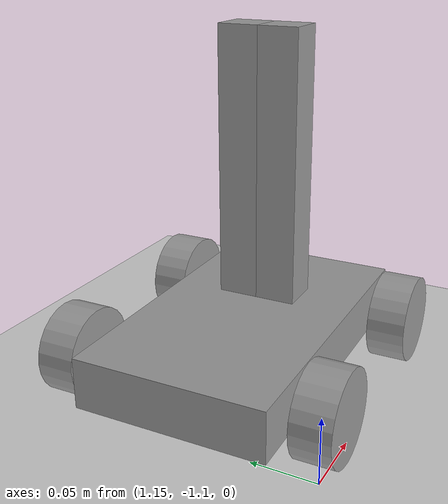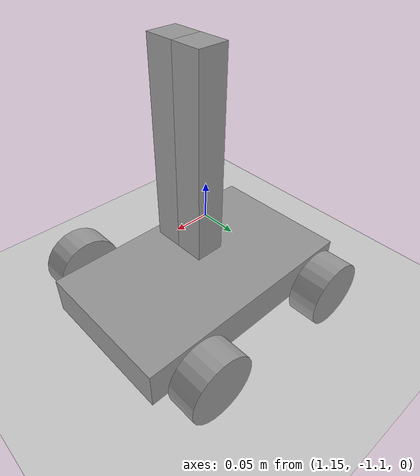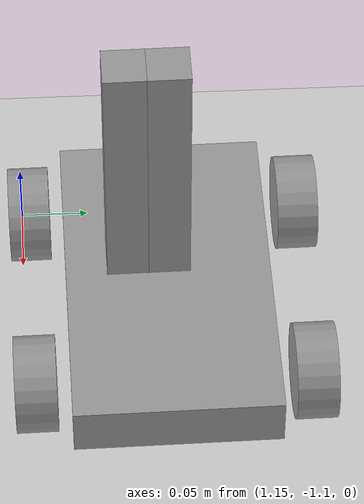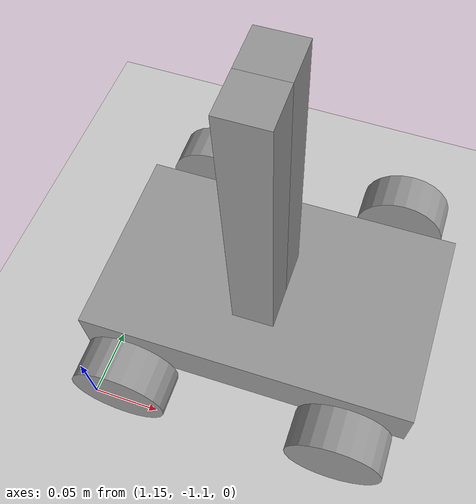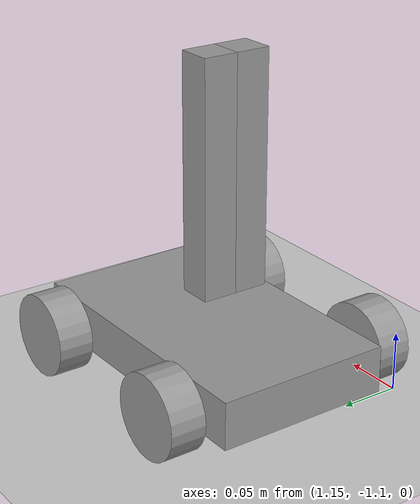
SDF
<sdf version="1.6">
 <world name="default">
  <model name="ground_plane">
   <static>1</static>
   <link name="link">
    <collision name="collision">
     <geometry><plane><normal>0 0 1</normal><size>100 100</size></plane></geometry>
     <surface><friction><ode><mu>100</mu><mu2>50</mu2></ode></friction></surface>
    </collision>
    <visual name="visual">
     <cast_shadows>0</cast_shadows>
     <geometry><plane><normal>0 0 1</normal><size>100 100</size></plane></geometry>
     <material>
      <script><uri>file://media/materials/scripts/gazebo.material</uri><name>Gazebo/Grey</name></script>
     </material>
    </visual>
   </link>
  </model>
  <model name="MRA">
   <link name="link_0">
    <inertial>
     <mass>1</mass>
     <inertia>
      <ixx>0.166667</ixx>
      <ixy>0</ixy>
      <ixz>0</ixz>
      <iyy>0.166667</iyy>
      <iyz>0</iyz>
      <izz>0.166667</izz>
     </inertia>
    </inertial>
    <pose>0.024765 0.00253 -0.04 0 -0 0</pose>
    <visual name="visual">
     <geometry><box><size>0.25 0.15 0.04</size></box></geometry>
     <material>
      <lighting>1</lighting>
      <script><uri>file://media/materials/scripts/gazebo.material</uri><name>Gazebo/Grey</name></script>
      <shader type="pixel"><normal_map>__default__</normal_map></shader>
      <ambient>0.3 0.3 0.3 1</ambient>
      <diffuse>0.7 0.7 0.7 1</diffuse>
      <specular>0.01 0.01 0.01 1</specular>
      <emissive>0 0 0 1</emissive>
     </material>
    </visual>
    <collision name="collision">
     <geometry><box><size>0.25 0.15 0.04</size></box></geometry>
     <surface>
      <friction>
       <ode><mu>1</mu><mu2>1</mu2><fdir1>0 0 0</fdir1><slip1>0</slip1><slip2>0</slip2></ode>
       <torsional>
        <coefficient>1</coefficient>
        <patch_radius>0</patch_radius>
        <surface_radius>0</surface_radius>
        <use_patch_radius>1</use_patch_radius>
        <ode><slip>0</slip></ode>
       </torsional>
      </friction>
      <bounce><restitution_coefficient>0</restitution_coefficient><threshold>1e+06</threshold></bounce>
      <contact>
       <collide_without_contact>0</collide_without_contact>
       <collide_without_contact_bitmask>1</collide_without_contact_bitmask>
       <collide_bitmask>1</collide_bitmask>
       <ode>
        <soft_cfm>0</soft_cfm>
        <soft_erp>0.2</soft_erp>
        <kp>1e+13</kp>
        <kd>1</kd>
        <max_vel>0.01</max_vel>
        <min_depth>0</min_depth>
       </ode>
       <bullet>
        <split_impulse>1</split_impulse>
        <split_impulse_penetration_threshold>-0.01</split_impulse_penetration_threshold>
        <soft_cfm>0</soft_cfm>
        <soft_erp>0.2</soft_erp>
        <kp>1e+13</kp>
        <kd>1</kd>
       </bullet>
      </contact>
     </surface>
    </collision>
   </link>
   <link name="link_1">
    <inertial>
     <mass>1</mass>
     <inertia><ixx>0.145833</ixx><ixy>0</ixy><ixz>0</ixz><iyy>0.145833</iyy><iyz>0</iyz><izz>0.125</izz></inertia>
    </inertial>
    <pose>0.104765 0.10253 -0.04 1.57079 -0 0</pose>
    <visual name="visual">
     <geometry><cylinder><radius>0.035</radius><length>0.03</length></cylinder></geometry>
     <material>
      <lighting>1</lighting>
      <script><uri>file://media/materials/scripts/gazebo.material</uri><name>Gazebo/Grey</name></script>
      <shader type="pixel"><normal_map>__default__</normal_map></shader>
      <ambient>0.3 0.3 0.3 1</ambient>
      <diffuse>0.7 0.7 0.7 1</diffuse>
      <specular>0.01 0.01 0.01 1</specular>
      <emissive>0 0 0 1</emissive>
     </material>
    </visual>
    <collision name="collision">
     <geometry><cylinder><radius>0.035</radius><length>0.03</length></cylinder></geometry>
     <surface>
      <friction>
       <ode><mu>1</mu><mu2>1</mu2><fdir1>0 0 0</fdir1><slip1>0</slip1><slip2>0</slip2></ode>
       <torsional>
        <coefficient>1</coefficient>
        <patch_radius>0</patch_radius>
        <surface_radius>0</surface_radius>
        <use_patch_radius>1</use_patch_radius>
        <ode><slip>0</slip></ode>
       </torsional>
      </friction>
      <bounce><restitution_coefficient>0</restitution_coefficient><threshold>1e+06</threshold></bounce>
      <contact>
       <collide_without_contact>0</collide_without_contact>
       <collide_without_contact_bitmask>1</collide_without_contact_bitmask>
       <collide_bitmask>1</collide_bitmask>
       <ode>
        <soft_cfm>0</soft_cfm>
        <soft_erp>0.2</soft_erp>
        <kp>1e+13</kp>
        <kd>1</kd>
        <max_vel>0.01</max_vel>
        <min_depth>0</min_depth>
       </ode>
       <bullet>
        <split_impulse>1</split_impulse>
        <split_impulse_penetration_threshold>-0.01</split_impulse_penetration_threshold>
        <soft_cfm>0</soft_cfm>
        <soft_erp>0.2</soft_erp>
        <kp>1e+13</kp>
        <kd>1</kd>
       </bullet>
      </contact>
     </surface>
    </collision>
   </link>
   <link name="link_1_clone">
    <inertial>
     <mass>1</mass>
     <inertia><ixx>0.145833</ixx><ixy>0</ixy><ixz>0</ixz><iyy>0.145833</iyy><iyz>0</iyz><izz>0.125</izz></inertia>
    </inertial>
    <pose>-0.055235 0.10253 -0.04 1.57079 -0 0</pose>
    <visual name="visual">
     <geometry><cylinder><radius>0.035</radius><length>0.03</length></cylinder></geometry>
     <material>
      <lighting>1</lighting>
      <script><uri>file://media/materials/scripts/gazebo.material</uri><name>Gazebo/Grey</name></script>
      <shader type="pixel"><normal_map>__default__</normal_map></shader>
      <ambient>0.3 0.3 0.3 1</ambient>
      <diffuse>0.7 0.7 0.7 1</diffuse>
      <specular>0.01 0.01 0.01 1</specular>
      <emissive>0 0 0 1</emissive>
     </material>
    </visual>
    <collision name="collision">
     <geometry><cylinder><radius>0.035</radius><length>0.03</length></cylinder></geometry>
     <surface>
      <friction>
       <ode><mu>1</mu><mu2>1</mu2><fdir1>0 0 0</fdir1><slip1>0</slip1><slip2>0</slip2></ode>
       <torsional>
        <coefficient>1</coefficient>
        <patch_radius>0</patch_radius>
        <surface_radius>0</surface_radius>
        <use_patch_radius>1</use_patch_radius>
        <ode><slip>0</slip></ode>
       </torsional>
      </friction>
      <bounce><restitution_coefficient>0</restitution_coefficient><threshold>1e+06</threshold></bounce>
      <contact>
       <collide_without_contact>0</collide_without_contact>
       <collide_without_contact_bitmask>1</collide_without_contact_bitmask>
       <collide_bitmask>1</collide_bitmask>
       <ode>
        <soft_cfm>0</soft_cfm>
        <soft_erp>0.2</soft_erp>
        <kp>1e+13</kp>
        <kd>1</kd>
        <max_vel>0.01</max_vel>
        <min_depth>0</min_depth>
       </ode>
       <bullet>
        <split_impulse>1</split_impulse>
        <split_impulse_penetration_threshold>-0.01</split_impulse_penetration_threshold>
        <soft_cfm>0</soft_cfm>
        <soft_erp>0.2</soft_erp>
        <kp>1e+13</kp>
        <kd>1</kd>
       </bullet>
      </contact>
     </surface>
    </collision>
   </link>
   <link name="link_1_clone_0">
    <inertial>
     <mass>1</mass>
     <inertia><ixx>0.145833</ixx><ixy>0</ixy><ixz>0</ixz><iyy>0.145833</iyy><iyz>0</iyz><izz>0.125</izz></inertia>
    </inertial>
    <pose>-0.055235 -0.09747 -0.04 1.57079 -0 0</pose>
    <visual name="visual">
     <geometry><cylinder><radius>0.035</radius><length>0.03</length></cylinder></geometry>
     <material>
      <lighting>1</lighting>
      <script><uri>file://media/materials/scripts/gazebo.material</uri><name>Gazebo/Grey</name></script>
      <shader type="pixel"><normal_map>__default__</normal_map></shader>
      <ambient>0.3 0.3 0.3 1</ambient>
      <diffuse>0.7 0.7 0.7 1</diffuse>
      <specular>0.01 0.01 0.01 1</specular>
      <emissive>0 0 0 1</emissive>
     </material>
    </visual>
    <collision name="collision">
     <geometry><cylinder><radius>0.035</radius><length>0.03</length></cylinder></geometry>
     <surface>
      <friction>
       <ode><mu>1</mu><mu2>1</mu2><fdir1>0 0 0</fdir1><slip1>0</slip1><slip2>0</slip2></ode>
       <torsional>
        <coefficient>1</coefficient>
        <patch_radius>0</patch_radius>
        <surface_radius>0</surface_radius>
        <use_patch_radius>1</use_patch_radius>
        <ode><slip>0</slip></ode>
       </torsional>
      </friction>
      <bounce><restitution_coefficient>0</restitution_coefficient><threshold>1e+06</threshold></bounce>
      <contact>
       <collide_without_contact>0</collide_without_contact>
       <collide_without_contact_bitmask>1</collide_without_contact_bitmask>
       <collide_bitmask>1</collide_bitmask>
       <ode>
        <soft_cfm>0</soft_cfm>
        <soft_erp>0.2</soft_erp>
        <kp>1e+13</kp>
        <kd>1</kd>
        <max_vel>0.01</max_vel>
        <min_depth>0</min_depth>
       </ode>
       <bullet>
        <split_impulse>1</split_impulse>
        <split_impulse_penetration_threshold>-0.01</split_impulse_penetration_threshold>
        <soft_cfm>0</soft_cfm>
        <soft_erp>0.2</soft_erp>
        <kp>1e+13</kp>
        <kd>1</kd>
       </bullet>
      </contact>
     </surface>
    </collision>
   </link>
   <link name="link_1_clone_1">
    <inertial>
     <mass>1</mass>
     <inertia><ixx>0.145833</ixx><ixy>0</ixy><ixz>0</ixz><iyy>0.145833</iyy><iyz>0</iyz><izz>0.125</izz></inertia>
    </inertial>
    <pose>0.104765 -0.09747 -0.04 1.57079 -0 0</pose>
    <visual name="visual">
     <geometry><cylinder><radius>0.035</radius><length>0.03</length></cylinder></geometry>
     <material>
      <lighting>1</lighting>
      <script><uri>file://media/materials/scripts/gazebo.material</uri><name>Gazebo/Grey</name></script>
      <shader type="pixel"><normal_map>__default__</normal_map></shader>
      <ambient>0.3 0.3 0.3 1</ambient>
      <diffuse>0.7 0.7 0.7 1</diffuse>
      <specular>0.01 0.01 0.01 1</specular>
      <emissive>0 0 0 1</emissive>
     </material>
    </visual>
    <collision name="collision">
     <geometry><cylinder><radius>0.035</radius><length>0.03</length></cylinder></geometry>
     <surface>
      <friction>
       <ode><mu>1</mu><mu2>1</mu2><fdir1>0 0 0</fdir1><slip1>0</slip1><slip2>0</slip2></ode>
       <torsional>
        <coefficient>1</coefficient>
        <patch_radius>0</patch_radius>
        <surface_radius>0</surface_radius>
        <use_patch_radius>1</use_patch_radius>
        <ode><slip>0</slip></ode>
       </torsional>
      </friction>
      <bounce><restitution_coefficient>0</restitution_coefficient><threshold>1e+06</threshold></bounce>
      <contact>
       <collide_without_contact>0</collide_without_contact>
       <collide_without_contact_bitmask>1</collide_without_contact_bitmask>
       <collide_bitmask>1</collide_bitmask>
       <ode>
        <soft_cfm>0</soft_cfm>
        <soft_erp>0.2</soft_erp>
        <kp>1e+13</kp>
        <kd>1</kd>
        <max_vel>0.01</max_vel>
        <min_depth>0</min_depth>
       </ode>
       <bullet>
        <split_impulse>1</split_impulse>
        <split_impulse_penetration_threshold>-0.01</split_impulse_penetration_threshold>
        <soft_cfm>0</soft_cfm>
        <soft_erp>0.2</soft_erp>
        <kp>1e+13</kp>
        <kd>1</kd>
       </bullet>
      </contact>
     </surface>
    </collision>
   </link>
   <link name="link_2">
    <inertial>
     <mass>1</mass>
     <inertia>
      <ixx>0.166667</ixx>
      <ixy>0</ixy>
      <ixz>0</ixz>
      <iyy>0.166667</iyy>
      <iyz>0</iyz>
      <izz>0.166667</izz>
     </inertia>
    </inertial>
    <pose>0.024765 0.00253 0.1 0 -0 0</pose>
    <visual name="visual">
     <geometry><box><size>0.03 0.03 0.2</size></box></geometry>
     <material>
      <lighting>1</lighting>
      <script><uri>file://media/materials/scripts/gazebo.material</uri><name>Gazebo/Grey</name></script>
      <shader type="pixel"><normal_map>__default__</normal_map></shader>
      <ambient>0.3 0.3 0.3 1</ambient>
      <diffuse>0.7 0.7 0.7 1</diffuse>
      <specular>0.01 0.01 0.01 1</specular>
      <emissive>0 0 0 1</emissive>
     </material>
    </visual>
    <collision name="collision">
     <geometry><box><size>0.03 0.03 0.2</size></box></geometry>
     <surface>
      <friction>
       <ode><mu>1</mu><mu2>1</mu2><fdir1>0 0 0</fdir1><slip1>0</slip1><slip2>0</slip2></ode>
       <torsional>
        <coefficient>1</coefficient>
        <patch_radius>0</patch_radius>
        <surface_radius>0</surface_radius>
        <use_patch_radius>1</use_patch_radius>
        <ode><slip>0</slip></ode>
       </torsional>
      </friction>
      <bounce><restitution_coefficient>0</restitution_coefficient><threshold>1e+06</threshold></bounce>
      <contact>
       <collide_without_contact>0</collide_without_contact>
       <collide_without_contact_bitmask>1</collide_without_contact_bitmask>
       <collide_bitmask>1</collide_bitmask>
       <ode>
        <soft_cfm>0</soft_cfm>
        <soft_erp>0.2</soft_erp>
        <kp>1e+13</kp>
        <kd>1</kd>
        <max_vel>0.01</max_vel>
        <min_depth>0</min_depth>
       </ode>
       <bullet>
        <split_impulse>1</split_impulse>
        <split_impulse_penetration_threshold>-0.01</split_impulse_penetration_threshold>
        <soft_cfm>0</soft_cfm>
        <soft_erp>0.2</soft_erp>
        <kp>1e+13</kp>
        <kd>1</kd>
       </bullet>
      </contact>
     </surface>
    </collision>
   </link>
   <link name="link_2_clone">
    <inertial>
     <mass>1</mass>
     <inertia>
      <ixx>0.166667</ixx>
      <ixy>0</ixy>
      <ixz>0</ixz>
      <iyy>0.166667</iyy>
      <iyz>0</iyz>
      <izz>0.166667</izz>
     </inertia>
    </inertial>
    <pose>0.024765 -0.02747 0.1 0 -0 0</pose>
    <visual name="visual">
     <geometry><box><size>0.03 0.03 0.2</size></box></geometry>
     <material>
      <lighting>1</lighting>
      <script><uri>file://media/materials/scripts/gazebo.material</uri><name>Gazebo/Grey</name></script>
      <shader type="pixel"><normal_map>__default__</normal_map></shader>
      <ambient>0.3 0.3 0.3 1</ambient>
      <diffuse>0.7 0.7 0.7 1</diffuse>
      <specular>0.01 0.01 0.01 1</specular>
      <emissive>0 0 0 1</emissive>
     </material>
    </visual>
    <collision name="collision">
     <geometry><box><size>0.03 0.03 0.2</size></box></geometry>
     <surface>
      <friction>
       <ode><mu>1</mu><mu2>1</mu2><fdir1>0 0 0</fdir1><slip1>0</slip1><slip2>0</slip2></ode>
       <torsional>
        <coefficient>1</coefficient>
        <patch_radius>0</patch_radius>
        <surface_radius>0</surface_radius>
        <use_patch_radius>1</use_patch_radius>
        <ode><slip>0</slip></ode>
       </torsional>
      </friction>
      <bounce><restitution_coefficient>0</restitution_coefficient><threshold>1e+06</threshold></bounce>
      <contact>
       <collide_without_contact>0</collide_without_contact>
       <collide_without_contact_bitmask>1</collide_without_contact_bitmask>
       <collide_bitmask>1</collide_bitmask>
       <ode>
        <soft_cfm>0</soft_cfm>
        <soft_erp>0.2</soft_erp>
        <kp>1e+13</kp>
        <kd>1</kd>
        <max_vel>0.01</max_vel>
        <min_depth>0</min_depth>
       </ode>
       <bullet>
        <split_impulse>1</split_impulse>
        <split_impulse_penetration_threshold>-0.01</split_impulse_penetration_threshold>
        <soft_cfm>0</soft_cfm>
        <soft_erp>0.2</soft_erp>
        <kp>1e+13</kp>
        <kd>1</kd>
       </bullet>
      </contact>
     </surface>
    </collision>
   </link>
   <joint name="link_0_JOINT_0" type="revolute">
    <parent>link_0</parent>
    <child>link_1_clone_1</child>
    <axis>
     <xyz>0 0 1</xyz>
     <use_parent_model_frame>0</use_parent_model_frame>
     <limit>
      <lower>-1.79769e+308</lower>
      <upper>1.79769e+308</upper>
      <effort>-1</effort>
      <velocity>-1</velocity>
     </limit>
     <dynamics>
      <spring_reference>0</spring_reference>
      <spring_stiffness>0</spring_stiffness>
      <damping>0</damping>
     </dynamics>
    </axis>
    <physics>
     <ode><limit><cfm>0</cfm><erp>0.2</erp></limit><suspension><cfm>0</cfm><erp>0.2</erp></suspension></ode>
    </physics>
   </joint>
   <joint name="link_0_JOINT_1" type="revolute">
    <parent>link_0</parent>
    <child>link_1_clone_0</child>
    <axis>
     <xyz>0 0 1</xyz>
     <use_parent_model_frame>0</use_parent_model_frame>
     <limit>
      <lower>-1.79769e+308</lower>
      <upper>1.79769e+308</upper>
      <effort>-1</effort>
      <velocity>-1</velocity>
     </limit>
     <dynamics>
      <spring_reference>0</spring_reference>
      <spring_stiffness>0</spring_stiffness>
      <damping>0</damping>
     </dynamics>
    </axis>
    <physics>
     <ode><limit><cfm>0</cfm><erp>0.2</erp></limit><suspension><cfm>0</cfm><erp>0.2</erp></suspension></ode>
    </physics>
   </joint>
   <joint name="link_0_JOINT_2" type="revolute">
    <parent>link_0</parent>
    <child>link_1</child>
    <axis>
     <xyz>0 0 1</xyz>
     <use_parent_model_frame>0</use_parent_model_frame>
     <limit>
      <lower>-1.79769e+308</lower>
      <upper>1.79769e+308</upper>
      <effort>-1</effort>
      <velocity>-1</velocity>
     </limit>
     <dynamics>
      <spring_reference>0</spring_reference>
      <spring_stiffness>0</spring_stiffness>
      <damping>0</damping>
     </dynamics>
    </axis>
    <physics>
     <ode><limit><cfm>0</cfm><erp>0.2</erp></limit><suspension><cfm>0</cfm><erp>0.2</erp></suspension></ode>
    </physics>
   </joint>
   <joint name="link_0_JOINT_3" type="revolute">
    <parent>link_0</parent>
    <child>link_1_clone</child>
    <axis>
     <xyz>0 0 1</xyz>
     <use_parent_model_frame>0</use_parent_model_frame>
     <limit>
      <lower>-1.79769e+308</lower>
      <upper>1.79769e+308</upper>
      <effort>-1</effort>
      <velocity>-1</velocity>
     </limit>
     <dynamics>
      <spring_reference>0</spring_reference>
      <spring_stiffness>0</spring_stiffness>
      <damping>0</damping>
     </dynamics>
    </axis>
    <physics>
     <ode><limit><cfm>0</cfm><erp>0.2</erp></limit><suspension><cfm>0</cfm><erp>0.2</erp></suspension></ode>
    </physics>
   </joint>
   <joint name="link_0_JOINT_4" type="revolute">
    <parent>link_0</parent>
    <child>link_2</child>
    <pose>0 0 -0.1 0 -0 0</pose>
    <axis>
     <xyz>0 1 0</xyz>
     <use_parent_model_frame>0</use_parent_model_frame>
     <limit>
      <lower>-1.79769e+308</lower>
      <upper>1.79769e+308</upper>
      <effort>-1</effort>
      <velocity>-1</velocity>
     </limit>
     <dynamics>
      <spring_reference>0</spring_reference>
      <spring_stiffness>0</spring_stiffness>
      <damping>0</damping>
     </dynamics>
    </axis>
    <physics>
     <ode><limit><cfm>0</cfm><erp>0.2</erp></limit><suspension><cfm>0</cfm><erp>0.2</erp></suspension></ode>
    </physics>
   </joint>
   <joint name="link_2_JOINT_9" type="revolute">
    <parent>link_2</parent>
    <child>link_2_clone</child>
    <pose>0 0 0.1 0 -0 0</pose>
    <axis>
     <xyz>0 1 0</xyz>
     <use_parent_model_frame>0</use_parent_model_frame>
     <limit>
      <lower>-1.79769e+308</lower>
      <upper>1.79769e+308</upper>
      <effort>-1</effort>
      <velocity>-1</velocity>
     </limit>
     <dynamics>
      <spring_reference>0</spring_reference>
      <spring_stiffness>0</spring_stiffness>
      <damping>0</damping>
     </dynamics>
    </axis>
    <physics>
     <ode><limit><cfm>0</cfm><erp>0.2</erp></limit><suspension><cfm>0</cfm><erp>0.2</erp></suspension></ode>
    </physics>
   </joint>
   <static>0</static>
   <pose>1.23302 -0.995436 0.074998 8e-06 3e-06 0.014231</pose>
  </model>
 </world>
</sdf>
